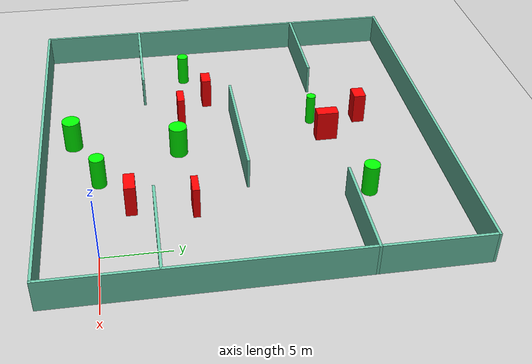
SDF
<sdf version="1.7">
 <world name="default">
  <light name="sun" type="directional">
   <pose>0 0 10 0 -0 0</pose>
   <diffuse>0.8 0.8 0.8 1</diffuse>
   <specular>0.2 0.2 0.2 1</specular>
   <attenuation>
    <range>1000</range>
    <constant>0.9</constant>
    <linear>0.01</linear>
    <quadratic>0.001</quadratic>
   </attenuation>
   <direction>-0.5 0.1 -0.9</direction>
   <spot><inner_angle>0</inner_angle><outer_angle>0</outer_angle><falloff>0</falloff></spot>
  </light>
  <model name="ground_plane">
   <static>1</static>
   <link name="link">
    <collision name="collision">
     <geometry><plane><normal>0 0 1</normal><size>100 100</size></plane></geometry>
     <surface>
      <contact><collide_bitmask>65535</collide_bitmask></contact>
      <friction><ode><mu>100</mu><mu2>50</mu2></ode></friction>
     </surface>
    </collision>
    <visual name="visual">
     <cast_shadows>0</cast_shadows>
     <geometry><plane><normal>0 0 1</normal><size>100 100</size></plane></geometry>
     <material>
      <script><uri>file://media/materials/scripts/gazebo.material</uri><name>Gazebo/Grey</name></script>
     </material>
    </visual>
   </link>
  </model>
  <gravity>0 0 -9.8</gravity>
  <magnetic_field>6e-06 2.3e-05 -4.2e-05</magnetic_field>
  <atmosphere type="adiabatic"/>
  <physics type="ode">
   <max_step_size>0.001</max_step_size>
   <real_time_factor>1</real_time_factor>
   <real_time_update_rate>1000</real_time_update_rate>
  </physics>
  <scene><ambient>0.4 0.4 0.4 1</ambient><background>0.7 0.7 0.7 1</background><shadows>1</shadows></scene>
  <spherical_coordinates>
   <surface_model>EARTH_WGS84</surface_model>
   <latitude_deg>0</latitude_deg>
   <longitude_deg>0</longitude_deg>
   <elevation>0</elevation>
   <heading_deg>0</heading_deg>
  </spherical_coordinates>
  <model name="my_base_walls">
   <link name="Wall_10">
    <collision name="Wall_10_Collision">
     <geometry><box><size>8.2 0.2 2.5</size></box></geometry>
     <pose>0 0 1.25 0 -0 0</pose>
    </collision>
    <visual name="Wall_10_Visual">
     <pose>0 0 1.25 0 -0 0</pose>
     <geometry><box><size>8.2 0.2 2.5</size></box></geometry>
     <material>
      <script><uri>file://media/materials/scripts/gazebo.material</uri><name>Gazebo/Grey</name></script>
      <ambient>0.435294 0.796078 0.67451 1</ambient>
     </material>
     <meta><layer>0</layer></meta>
    </visual>
    <pose>-11 -7 0 0 -0 0</pose>
   </link>
   <link name="Wall_12">
    <collision name="Wall_12_Collision">
     <geometry><box><size>8.2 0.2 2.5</size></box></geometry>
     <pose>0 0 1.25 0 -0 0</pose>
    </collision>
    <visual name="Wall_12_Visual">
     <pose>0 0 1.25 0 -0 0</pose>
     <geometry><box><size>8.2 0.2 2.5</size></box></geometry>
     <material>
      <script><uri>file://media/materials/scripts/gazebo.material</uri><name>Gazebo/Grey</name></script>
      <ambient>0.435294 0.796078 0.67451 1</ambient>
     </material>
     <meta><layer>0</layer></meta>
    </visual>
    <pose>-11 7 0 0 -0 0</pose>
   </link>
   <link name="Wall_14">
    <collision name="Wall_14_Collision">
     <geometry><box><size>8.2 0.2 2.5</size></box></geometry>
     <pose>0 0 1.25 0 -0 0</pose>
    </collision>
    <visual name="Wall_14_Visual">
     <pose>0 0 1.25 0 -0 0</pose>
     <geometry><box><size>8.2 0.2 2.5</size></box></geometry>
     <material>
      <script><uri>file://media/materials/scripts/gazebo.material</uri><name>Gazebo/Grey</name></script>
      <ambient>0.435294 0.796078 0.67451 1</ambient>
     </material>
     <meta><layer>0</layer></meta>
    </visual>
    <pose>11 7 0 0 -0 3.14159</pose>
   </link>
   <link name="Wall_16">
    <collision name="Wall_16_Collision">
     <geometry><box><size>10.2 0.2 2.5</size></box></geometry>
     <pose>0 0 1.25 0 -0 0</pose>
    </collision>
    <visual name="Wall_16_Visual">
     <pose>0 0 1.25 0 -0 0</pose>
     <geometry><box><size>10.2 0.2 2.5</size></box></geometry>
     <material>
      <script><uri>file://media/materials/scripts/gazebo.material</uri><name>Gazebo/Grey</name></script>
      <ambient>0.435294 0.796078 0.67451 1</ambient>
     </material>
     <meta><layer>0</layer></meta>
    </visual>
    <pose>0 0 0 0 -0 3.14159</pose>
   </link>
   <link name="Wall_2">
    <collision name="Wall_2_Collision">
     <geometry><box><size>30.2 0.2 2.5</size></box></geometry>
     <pose>0 0 1.25 0 -0 0</pose>
    </collision>
    <visual name="Wall_2_Visual">
     <pose>0 0 1.25 0 -0 0</pose>
     <geometry><box><size>30.2 0.2 2.5</size></box></geometry>
     <material>
      <script><uri>file://media/materials/scripts/gazebo.material</uri><name>Gazebo/Grey</name></script>
      <ambient>0.435294 0.796078 0.67451 1</ambient>
     </material>
     <meta><layer>0</layer></meta>
    </visual>
    <pose>0 -15 0 0 -0 3.14159</pose>
   </link>
   <link name="Wall_3">
    <collision name="Wall_3_Collision">
     <geometry><box><size>30.2 0.2 2.5</size></box></geometry>
     <pose>0 0 1.25 0 -0 0</pose>
    </collision>
    <visual name="Wall_3_Visual">
     <pose>0 0 1.25 0 -0 0</pose>
     <geometry><box><size>30.2 0.2 2.5</size></box></geometry>
     <material>
      <script><uri>file://media/materials/scripts/gazebo.material</uri><name>Gazebo/Grey</name></script>
      <ambient>0.435294 0.796078 0.67451 1</ambient>
     </material>
     <meta><layer>0</layer></meta>
    </visual>
    <pose>-15 0 0 0 -0 1.5708</pose>
   </link>
   <link name="Wall_4">
    <collision name="Wall_4_Collision">
     <geometry><box><size>30.2 0.2 2.5</size></box></geometry>
     <pose>0 0 1.25 0 -0 0</pose>
    </collision>
    <visual name="Wall_4_Visual">
     <pose>0 0 1.25 0 -0 0</pose>
     <geometry><box><size>30.2 0.2 2.5</size></box></geometry>
     <material>
      <script><uri>file://media/materials/scripts/gazebo.material</uri><name>Gazebo/Grey</name></script>
      <ambient>0.435294 0.796078 0.67451 1</ambient>
     </material>
     <meta><layer>0</layer></meta>
    </visual>
    <pose>0 15 0 0 -0 0</pose>
   </link>
   <link name="Wall_6">
    <collision name="Wall_6_Collision">
     <geometry><box><size>30.2 0.2 2.5</size></box></geometry>
     <pose>0 0 1.25 0 -0 0</pose>
    </collision>
    <visual name="Wall_6_Visual">
     <pose>0 0 1.25 0 -0 0</pose>
     <geometry><box><size>30.2 0.2 2.5</size></box></geometry>
     <material>
      <script><uri>file://media/materials/scripts/gazebo.material</uri><name>Gazebo/Grey</name></script>
      <ambient>0.435294 0.796078 0.67451 1</ambient>
     </material>
     <meta><layer>0</layer></meta>
    </visual>
    <pose>15 0 0 0 -0 1.5708</pose>
   </link>
   <link name="Wall_8">
    <collision name="Wall_8_Collision">
     <geometry><box><size>8.2 0.2 2.5</size></box></geometry>
     <pose>0 0 1.25 0 -0 0</pose>
    </collision>
    <visual name="Wall_8_Visual">
     <pose>0 0 1.25 0 -0 0</pose>
     <geometry><box><size>8.2 0.2 2.5</size></box></geometry>
     <material>
      <script><uri>file://media/materials/scripts/gazebo.material</uri><name>Gazebo/Grey</name></script>
      <ambient>0.435294 0.796078 0.67451 1</ambient>
     </material>
     <meta><layer>0</layer></meta>
    </visual>
    <pose>11 -7 0 0 -0 3.14159</pose>
   </link>
   <static>1</static>
   <pose>-11 11 0 0 -0 0</pose>
  </model>
  <model name="cylinder1">
   <static>1</static>
   <link name="link">
    <inertial>
     <mass>1</mass>
     <inertia><ixx>0.5</ixx><ixy>0</ixy><ixz>0</ixz><iyy>0.5</iyy><iyz>0</iyz><izz>1</izz></inertia>
    </inertial>
    <collision name="collision">
     <geometry><cylinder><radius>0.6885322781435474</radius><length>2.5</length></cylinder></geometry>
    </collision>
    <visual name="visual">
     <geometry><cylinder><radius>0.6885322781435474</radius><length>2.5</length></cylinder></geometry>
     <material>
      <ambient>0 1 0 1</ambient>
      <diffuse>0 1 0 1</diffuse>
      <specular>0.1 0.1 0.1 1</specular>
      <emissive>0 0 0 0</emissive>
     </material>
    </visual>
   </link>
   <pose>-12.760158599793133 -1.8673323998003037 1.25 0 0 0</pose>
  </model>
  <model name="cylinder2">
   <static>1</static>
   <link name="link">
    <inertial>
     <mass>1</mass>
     <inertia><ixx>0.5</ixx><ixy>0</ixy><ixz>0</ixz><iyy>0.5</iyy><iyz>0</iyz><izz>1</izz></inertia>
    </inertial>
    <collision name="collision">
     <geometry><cylinder><radius>0.4453239172805479</radius><length>2.5</length></cylinder></geometry>
    </collision>
    <visual name="visual">
     <geometry><cylinder><radius>0.4453239172805479</radius><length>2.5</length></cylinder></geometry>
     <material>
      <ambient>0 1 0 1</ambient>
      <diffuse>0 1 0 1</diffuse>
      <specular>0.1 0.1 0.1 1</specular>
      <emissive>0 0 0 0</emissive>
     </material>
    </visual>
   </link>
   <pose>-21.24961281469394 7.547154459583293 1.25 0 0 0</pose>
  </model>
  <model name="cylinder3">
   <static>1</static>
   <link name="link">
    <inertial>
     <mass>1</mass>
     <inertia><ixx>0.5</ixx><ixy>0</ixy><ixz>0</ixz><iyy>0.5</iyy><iyz>0</iyz><izz>1</izz></inertia>
    </inertial>
    <collision name="collision">
     <geometry><cylinder><radius>0.35955119435866845</radius><length>2.5</length></cylinder></geometry>
    </collision>
    <visual name="visual">
     <geometry><cylinder><radius>0.35955119435866845</radius><length>2.5</length></cylinder></geometry>
     <material>
      <ambient>0 1 0 1</ambient>
      <diffuse>0 1 0 1</diffuse>
      <specular>0.1 0.1 0.1 1</specular>
      <emissive>0 0 0 0</emissive>
     </material>
    </visual>
   </link>
   <pose>-13.600428592602679 17.29689449939636 1.25 0 0 0</pose>
  </model>
  <model name="cylinder4">
   <static>1</static>
   <link name="link">
    <inertial>
     <mass>1</mass>
     <inertia><ixx>0.5</ixx><ixy>0</ixy><ixz>0</ixz><iyy>0.5</iyy><iyz>0</iyz><izz>1</izz></inertia>
    </inertial>
    <collision name="collision">
     <geometry><cylinder><radius>0.5929892066296165</radius><length>2.5</length></cylinder></geometry>
    </collision>
    <visual name="visual">
     <geometry><cylinder><radius>0.5929892066296165</radius><length>2.5</length></cylinder></geometry>
     <material>
      <ambient>0 1 0 1</ambient>
      <diffuse>0 1 0 1</diffuse>
      <specular>0.1 0.1 0.1 1</specular>
      <emissive>0 0 0 0</emissive>
     </material>
    </visual>
   </link>
   <pose>-4.210904674066779 19.762535935938256 1.25 0 0 0</pose>
  </model>
  <model name="cylinder5">
   <static>1</static>
   <link name="link">
    <inertial>
     <mass>1</mass>
     <inertia><ixx>0.5</ixx><ixy>0</ixy><ixz>0</ixz><iyy>0.5</iyy><iyz>0</iyz><izz>1</izz></inertia>
    </inertial>
    <collision name="collision">
     <geometry><cylinder><radius>0.6934241726107977</radius><length>2.5</length></cylinder></geometry>
    </collision>
    <visual name="visual">
     <geometry><cylinder><radius>0.6934241726107977</radius><length>2.5</length></cylinder></geometry>
     <material>
      <ambient>0 1 0 1</ambient>
      <diffuse>0 1 0 1</diffuse>
      <specular>0.1 0.1 0.1 1</specular>
      <emissive>0 0 0 0</emissive>
     </material>
    </visual>
   </link>
   <pose>-10.871622859594023 6.271100874353801 1.25 0 0 0</pose>
  </model>
  <model name="cylinder6">
   <static>1</static>
   <link name="link">
    <inertial>
     <mass>1</mass>
     <inertia><ixx>0.5</ixx><ixy>0</ixy><ixz>0</ixz><iyy>0.5</iyy><iyz>0</iyz><izz>1</izz></inertia>
    </inertial>
    <collision name="collision">
     <geometry><cylinder><radius>0.5644620502795387</radius><length>2.5</length></cylinder></geometry>
    </collision>
    <visual name="visual">
     <geometry><cylinder><radius>0.5644620502795387</radius><length>2.5</length></cylinder></geometry>
     <material>
      <ambient>0 1 0 1</ambient>
      <diffuse>0 1 0 1</diffuse>
      <specular>0.1 0.1 0.1 1</specular>
      <emissive>0 0 0 0</emissive>
     </material>
    </visual>
   </link>
   <pose>-7.807278814005858 0.07012108365603487 1.25 0 0 0</pose>
  </model>
  <model name="box1">
   <static>1</static>
   <link name="link">
    <inertial>
     <mass>1</mass>
     <inertia><ixx>0.083</ixx><ixy>0</ixy><ixz>0</ixz><iyy>0.083</iyy><iyz>0</iyz><izz>0.083</izz></inertia>
    </inertial>
    <collision name="collision">
     <geometry><box><size>1.5113718681202255 0.5619336150368444 2.5</size></box></geometry>
    </collision>
    <visual name="visual">
     <geometry><box><size>1.5113718681202255 0.5619336150368444 2.5</size></box></geometry>
     <material>
      <ambient>1 0 0 1</ambient>
      <diffuse>1 0 0 1</diffuse>
      <specular>0.1 0.1 0.1 1</specular>
      <emissive>0 0 0 0</emissive>
     </material>
    </visual>
    <sensor name="my_contact" type="contact">
     <contact><collision>box_collision</collision><topic>__default_topic__</topic></contact>
    </sensor>
   </link>
   <pose>-15.116576915852514 6.842038438791791 1.25 0 0 0</pose>
  </model>
  <model name="box2">
   <static>1</static>
   <link name="link">
    <inertial>
     <mass>1</mass>
     <inertia><ixx>0.083</ixx><ixy>0</ixy><ixz>0</ixz><iyy>0.083</iyy><iyz>0</iyz><izz>0.083</izz></inertia>
    </inertial>
    <collision name="collision">
     <geometry><box><size>0.8989635617570018 1.6949138201799832 2.5</size></box></geometry>
    </collision>
    <visual name="visual">
     <geometry><box><size>0.8989635617570018 1.6949138201799832 2.5</size></box></geometry>
     <material>
      <ambient>1 0 0 1</ambient>
      <diffuse>1 0 0 1</diffuse>
      <specular>0.1 0.1 0.1 1</specular>
      <emissive>0 0 0 0</emissive>
     </material>
    </visual>
    <sensor name="my_contact" type="contact">
     <contact><collision>box_collision</collision><topic>__default_topic__</topic></contact>
    </sensor>
   </link>
   <pose>-11.361174257976643 18.08843419825923 1.25 0 0 0</pose>
  </model>
  <model name="box3">
   <static>1</static>
   <link name="link">
    <inertial>
     <mass>1</mass>
     <inertia><ixx>0.083</ixx><ixy>0</ixy><ixz>0</ixz><iyy>0.083</iyy><iyz>0</iyz><izz>0.083</izz></inertia>
    </inertial>
    <collision name="collision">
     <geometry><box><size>1.6957241066559696 0.8227281151789931 2.5</size></box></geometry>
    </collision>
    <visual name="visual">
     <geometry><box><size>1.6957241066559696 0.8227281151789931 2.5</size></box></geometry>
     <material>
      <ambient>1 0 0 1</ambient>
      <diffuse>1 0 0 1</diffuse>
      <specular>0.1 0.1 0.1 1</specular>
      <emissive>0 0 0 0</emissive>
     </material>
    </visual>
    <sensor name="my_contact" type="contact">
     <contact><collision>box_collision</collision><topic>__default_topic__</topic></contact>
    </sensor>
   </link>
   <pose>-4.800113113195698 2.3231568294042795 1.25 0 0 0</pose>
  </model>
  <model name="box4">
   <static>1</static>
   <link name="link">
    <inertial>
     <mass>1</mass>
     <inertia><ixx>0.083</ixx><ixy>0</ixy><ixz>0</ixz><iyy>0.083</iyy><iyz>0</iyz><izz>0.083</izz></inertia>
    </inertial>
    <collision name="collision">
     <geometry><box><size>1.2377635748542768 0.9592413414004858 2.5</size></box></geometry>
    </collision>
    <visual name="visual">
     <geometry><box><size>1.2377635748542768 0.9592413414004858 2.5</size></box></geometry>
     <material>
      <ambient>1 0 0 1</ambient>
      <diffuse>1 0 0 1</diffuse>
      <specular>0.1 0.1 0.1 1</specular>
      <emissive>0 0 0 0</emissive>
     </material>
    </visual>
    <sensor name="my_contact" type="contact">
     <contact><collision>box_collision</collision><topic>__default_topic__</topic></contact>
    </sensor>
   </link>
   <pose>-13.581802164132206 21.203519192096863 1.25 0 0 0</pose>
  </model>
  <model name="box5">
   <static>1</static>
   <link name="link">
    <inertial>
     <mass>1</mass>
     <inertia><ixx>0.083</ixx><ixy>0</ixy><ixz>0</ixz><iyy>0.083</iyy><iyz>0</iyz><izz>0.083</izz></inertia>
    </inertial>
    <collision name="collision">
     <geometry><box><size>1.3367640492393105 0.746812858267301 2.5</size></box></geometry>
    </collision>
    <visual name="visual">
     <geometry><box><size>1.3367640492393105 0.746812858267301 2.5</size></box></geometry>
     <material>
      <ambient>1 0 0 1</ambient>
      <diffuse>1 0 0 1</diffuse>
      <specular>0.1 0.1 0.1 1</specular>
      <emissive>0 0 0 0</emissive>
     </material>
    </visual>
    <sensor name="my_contact" type="contact">
     <contact><collision>box_collision</collision><topic>__default_topic__</topic></contact>
    </sensor>
   </link>
   <pose>-17.630445710219288 9.158643180419158 1.25 0 0 0</pose>
  </model>
  <model name="box6">
   <static>1</static>
   <link name="link">
    <inertial>
     <mass>1</mass>
     <inertia><ixx>0.083</ixx><ixy>0</ixy><ixz>0</ixz><iyy>0.083</iyy><iyz>0</iyz><izz>0.083</izz></inertia>
    </inertial>
    <collision name="collision">
     <geometry><box><size>1.6279499696788526 0.511791912191544 2.5</size></box></geometry>
    </collision>
    <visual name="visual">
     <geometry><box><size>1.6279499696788526 0.511791912191544 2.5</size></box></geometry>
     <material>
      <ambient>1 0 0 1</ambient>
      <diffuse>1 0 0 1</diffuse>
      <specular>0.1 0.1 0.1 1</specular>
      <emissive>0 0 0 0</emissive>
     </material>
    </visual>
    <sensor name="my_contact" type="contact">
     <contact><collision>box_collision</collision><topic>__default_topic__</topic></contact>
    </sensor>
   </link>
   <pose>-3.937602515511834 6.902006721665508 1.25 0 0 0</pose>
  </model>
 </world>
</sdf>
